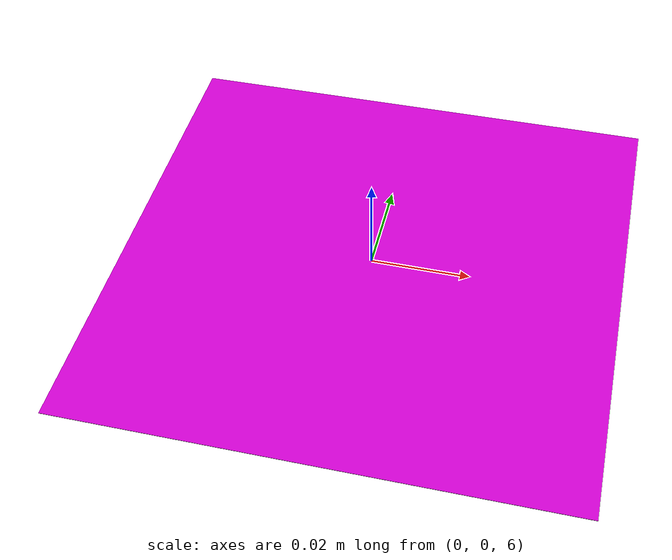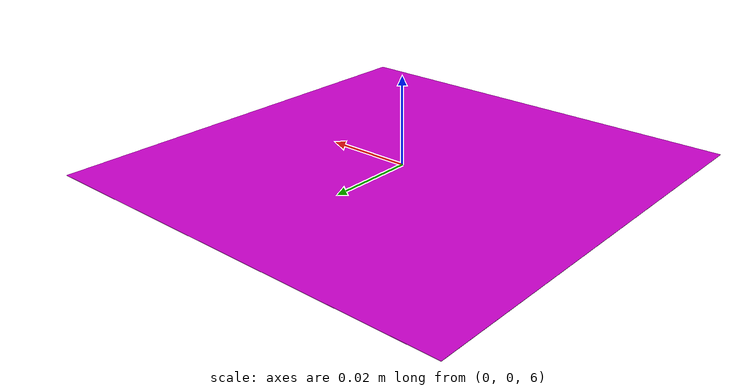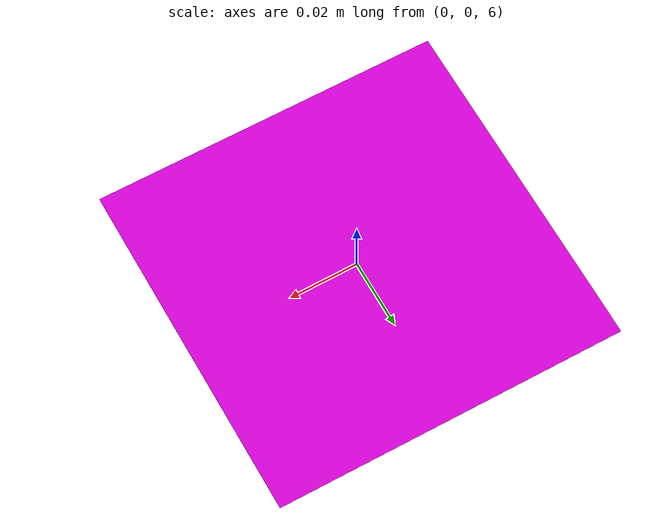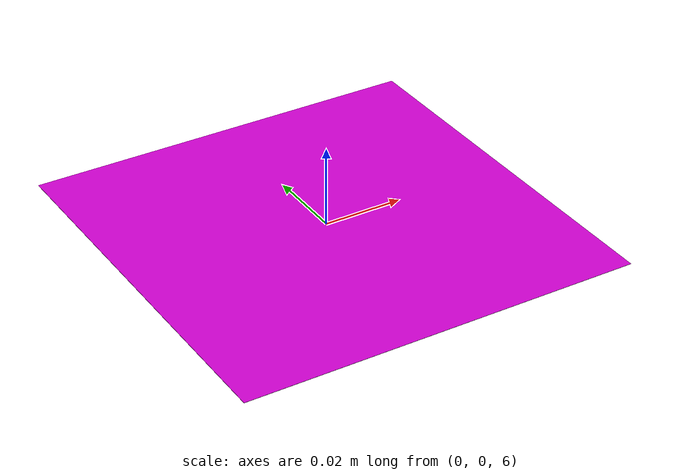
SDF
<?xml version="1.0" ?>
<sdf version="1.11">
  <world name="customcamera">
    <plugin
      filename="librtsensorsystem.so"
      name="rtsensor::RtSensorSystem"/>
    <plugin
      filename="gz-sim-sensors-system"
      name="gz::sim::systems::Sensors"/>
    <plugin
      filename="gz-sim-scene-broadcaster-system"
      name="gz::sim::systems::SceneBroadcaster"/>

    <scene>
      <ambient>1.0 1.0 1.0</ambient>
      <background>0.8 0.8 0.8</background>
    </scene>

    <physics name="1ms" type="dart">
      <max_step_size>0.001</max_step_size>
      <real_time_factor>0</real_time_factor>
    </physics>

    <light type="directional" name="sun">
      <cast_shadows>true</cast_shadows>
      <pose>0 0 10 0 0 0</pose>
      <diffuse>0.8 0.8 0.8 1</diffuse>
      <specular>0.2 0.2 0.2 1</specular>
      <attenuation>
        <range>1000</range>
        <constant>0.9</constant>
        <linear>0.01</linear>
        <quadratic>0.001</quadratic>
      </attenuation>
      <direction>-0.5 0.1 -0.9</direction>
    </light>

    <model name="camera">
      <pose>0 0 6.0 0 0 0</pose>
      <static>true</static>
      <link name="link">
        <collision name="collision">
          <geometry>
            <plane>
              <normal>0 0 1</normal>
              <size>0.1 0.1</size>
            </plane>
          </geometry>
        </collision>
        <visual name="visual">
          <geometry>
            <plane>
              <normal>0 0 1</normal>
              <size>0.1 0.1</size>
            </plane>
          </geometry>
          <material>
            <ambient>0.8 0.0 0.8 1</ambient>
            <diffuse>0.8 0.0 0.8 1</diffuse>
            <specular>0.8 0.0 0.8 1</specular>
          </material>
        </visual>
        <sensor name="rt_camera" type="custom" gz:type="rt_camera">
          <pose>0 0 0.1 0 0 0</pose>
          <always_on>1</always_on>
          <update_rate>10</update_rate>
          <topic>/test/camera</topic>
          <gz:rt_camera>
            <!-- camera parameters -->
            <fov>1.047</fov>
          </gz:rt_camera>
        </sensor>
      </link>
    </model>

    <model name="ground_plane">
      <static>true</static>
      <link name="link">
        <collision name="collision">
          <geometry>
            <plane>
              <normal>0 0 1</normal>
              <size>20 20</size>
            </plane>
          </geometry>
        </collision>
        <visual name="visual">
          <geometry>
            <plane>
              <normal>0 0 1</normal>
              <size>20 20</size>
            </plane>
          </geometry>
          <material>
            <ambient>0.8 0.8 0.8 1</ambient>
            <diffuse>0.8 0.8 0.8 1</diffuse>
            <specular>0.8 0.8 0.8 1</specular>
          </material>
        </visual>
      </link>
    </model>

  </world>
</sdf>
